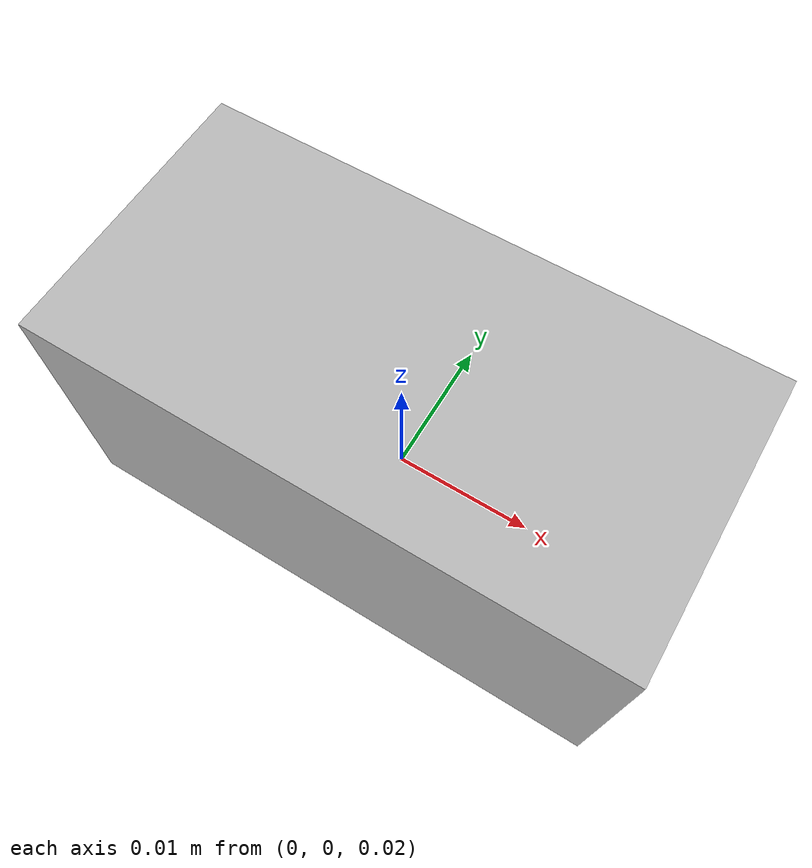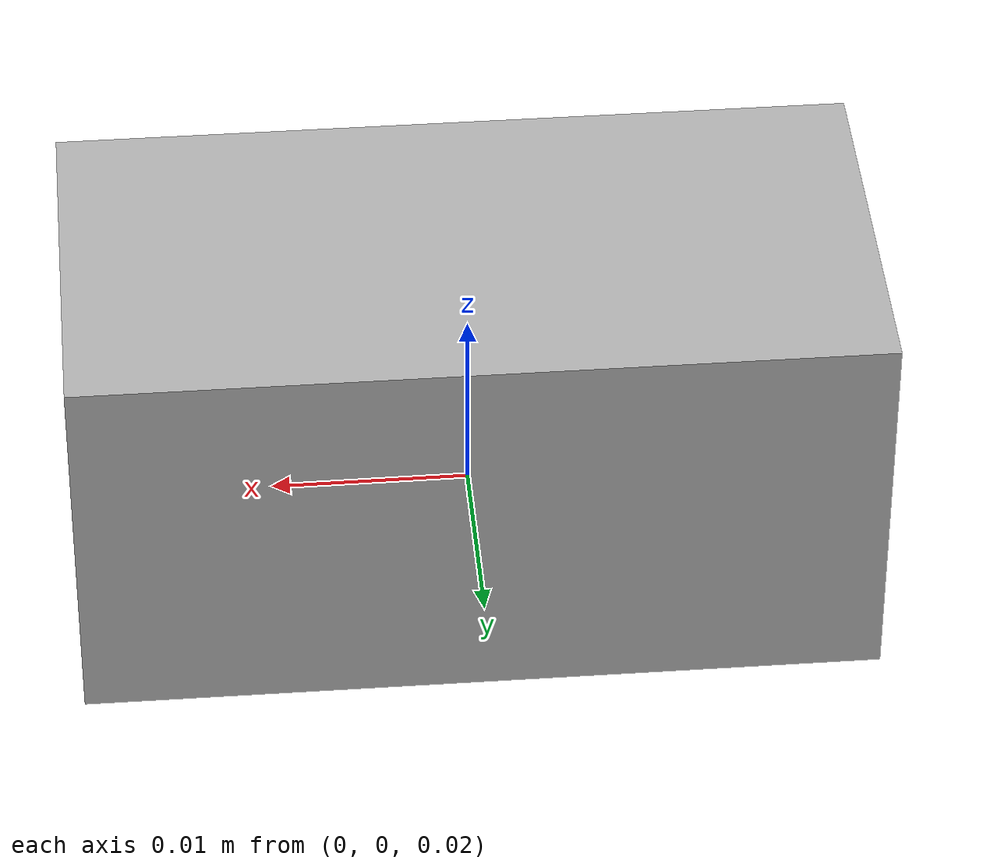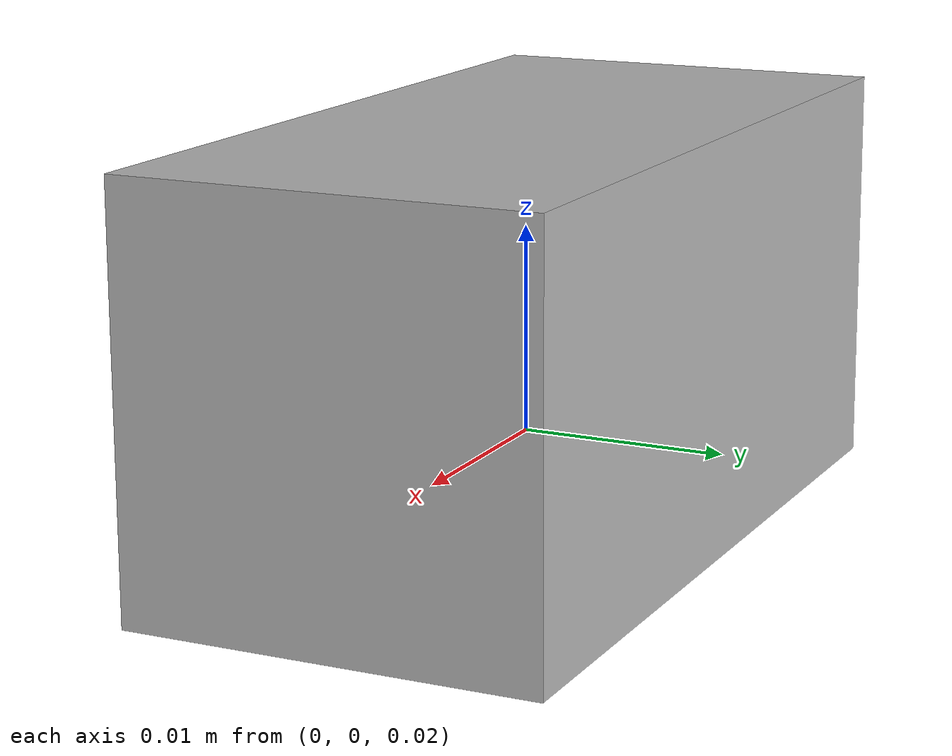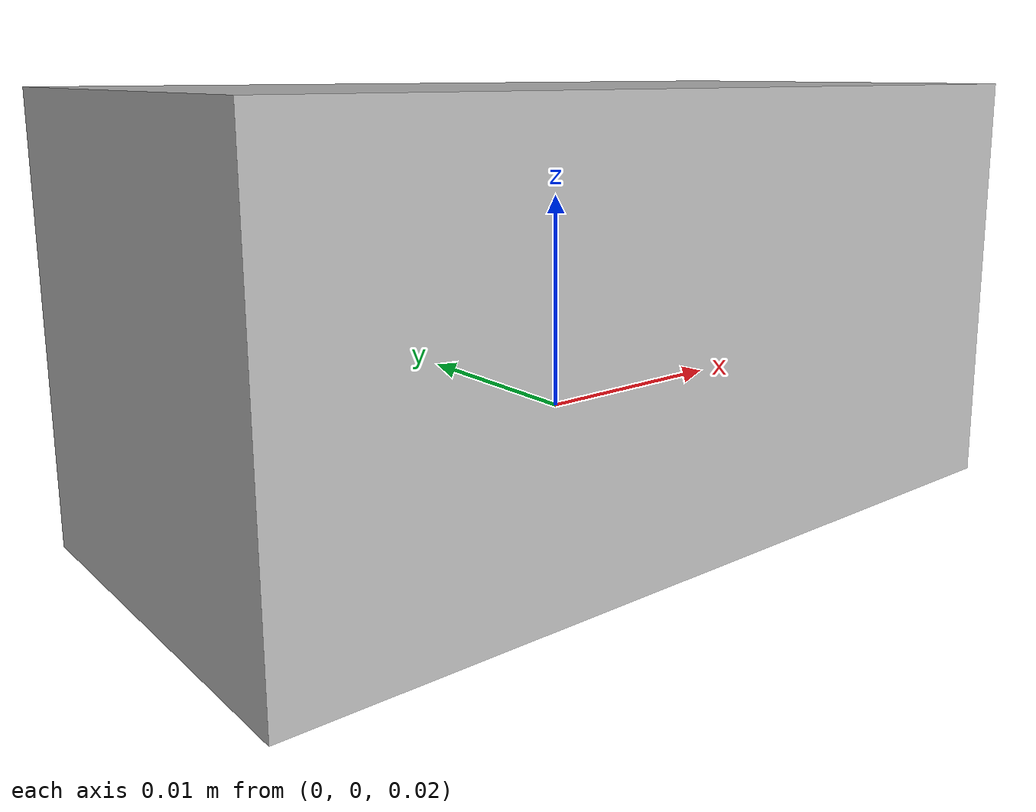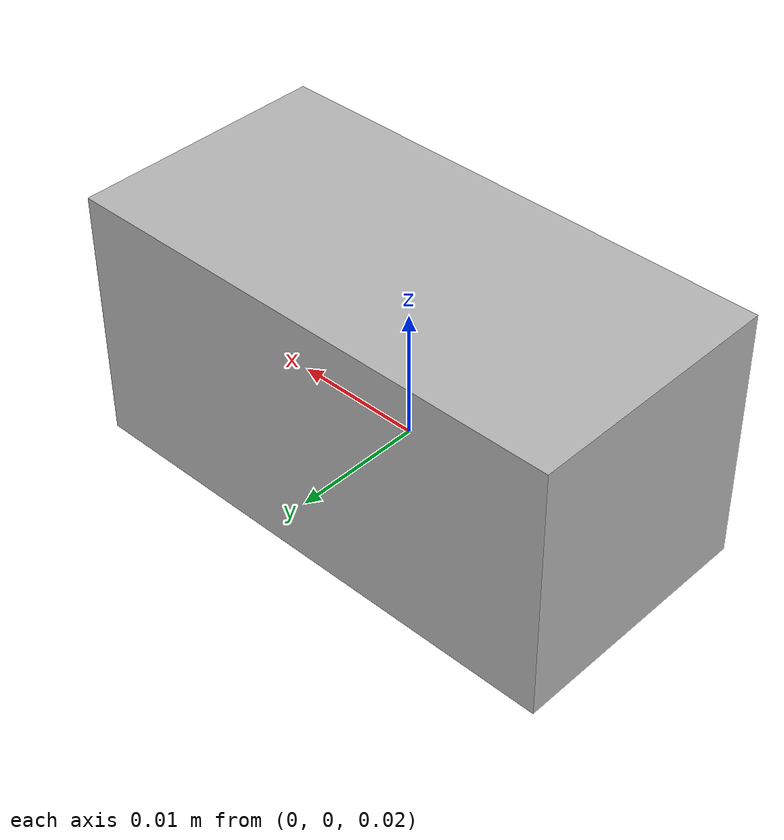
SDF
<?xml version="1.0"?>
<sdf version="1.3">
  <model name="testbox">
	<pose>0 0 0.025 0 0 0</pose>
	<static>false</static>
    <link name="link">
      <inertial>
        <mass>0.0001</mass>
      </inertial>
      <collision name="collision">
        <geometry>
          <box>
            <size>0.04 0.02 0.02</size>
          </box>
        </geometry>
		<surface>
		  <friction>
			<ode>
			  <mu>1.0</mu>
			</ode>
		  </friction>
		</surface>
      </collision>
      <visual name="visual">
        <geometry>
          <box>
            <size>0.04 0.02 0.02</size>
          </box>
        </geometry>
      </visual>
    </link>
  </model>
</sdf>
